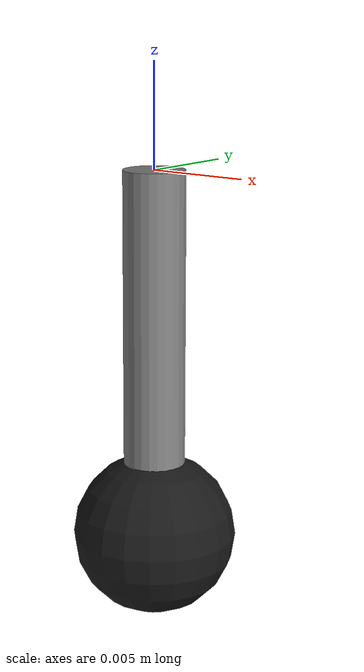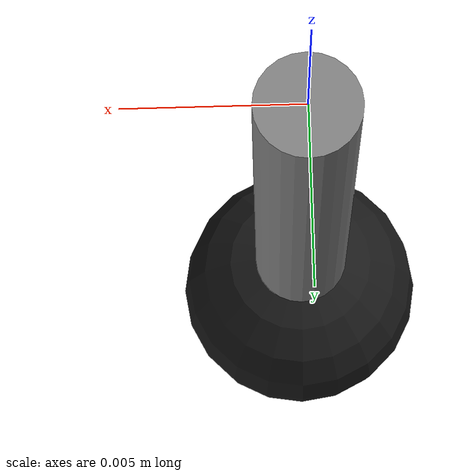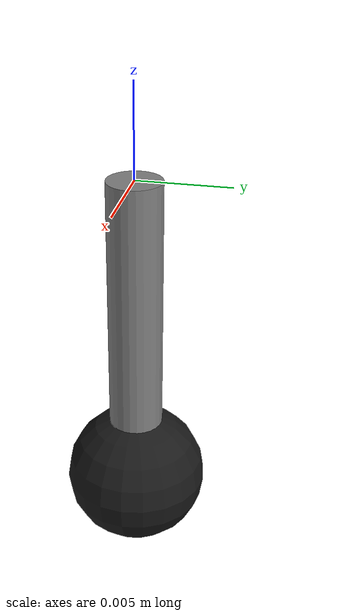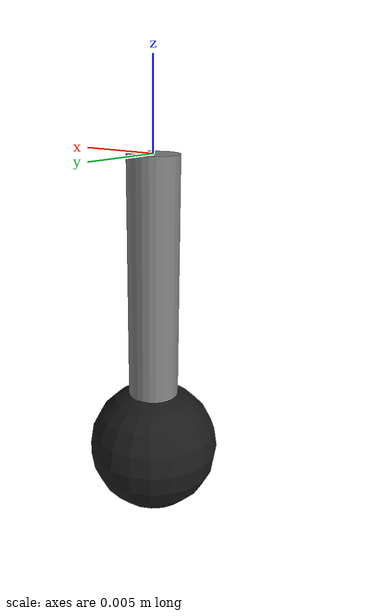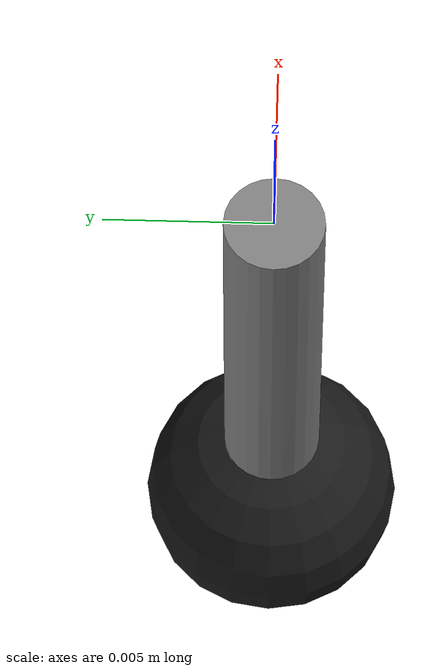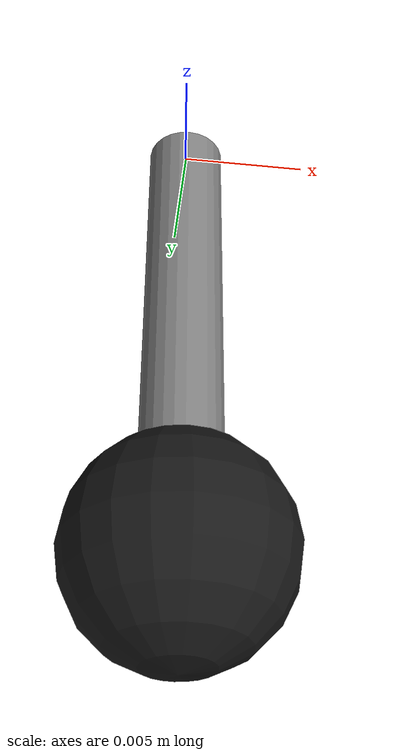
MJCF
<mujoco model="1_3D_model_w_N25">
  <compiler inertiafromgeom="auto" angle="radian" />
   <option timestep="0.0001" iterations="50" solver="PGS" integrator="Euler" gravity="0 0 -9.81" collision="all">
     <flag energy="enable" />
   </option>
   <asset>
     <texture type="skybox" builtin="checker" rgb1="1 1 1" rgb2="1 1 1" width="200" height="200"  />
		 <material name="JointColor" 		 rgba="0.8500, 0.3250, 0.0980 1" />
		 <material name="LimbColor" 		 rgba="0.5 0.5 0.5 1" />
			<material name="pointMassColor" rgba="0.1 0.1 0.1 1" />
      <material name="RefMassColor" rgba="0.2 0.9 0.1 1.0" />
   </asset>
	 <visual>
		 <global glow="1.0" fovy="45" ipd="0.0"/>
		 <headlight specular="0.0 0.0 0.0" diffuse="1.0 1.0 1.0"/>
 	 </visual>

   <worldbody>
     <body name="cameramover" mocap="true" pos="0 0 0">
        <camera name="mycamera" pos="0.0 2.0 2.0" euler="1.5707 0 0" />
      </body>
            <body name="node1" euler="0 0 0" pos="0 0 0">
              <geom name="geom1" type="sphere" material="pointMassColor" pos="0 0 -0.0180" size="0.0040000" mass="0.0120000" />
              <joint name="node1JointX" type="hinge" axis="1 0 0" pos="0 0 0" springref="0" stiffness="0" damping="0" />
               <joint name="node1JointY" type="hinge" axis="0 -1 0" pos="0 0 0" springref="0" stiffness="0" damping="0" />
               <geom type="cylinder" fromto="0 0 0 0 0 -0.0180" material="LimbColor" size="0.0015000" mass="0" />
               <geom name="geom2" type="sphere" material="pointMassColor" pos="0 0 -0.0180" size="0.0040000" mass="0.0120000" />

            </body>
            <!-- === [ N, L, M, k, b, rho ] = [25,1.800000,0.300000,0.242000,0.092000,1.000000] -->

   </worldbody>

</mujoco>
